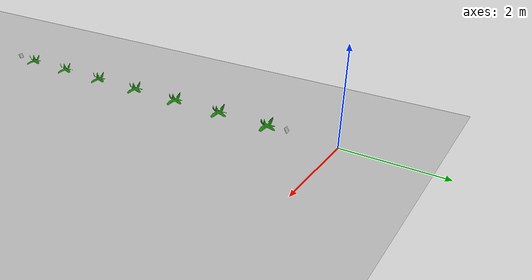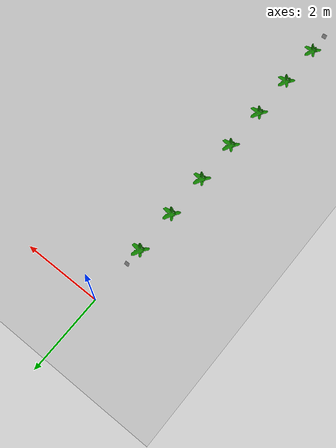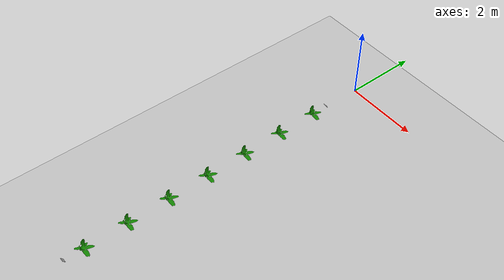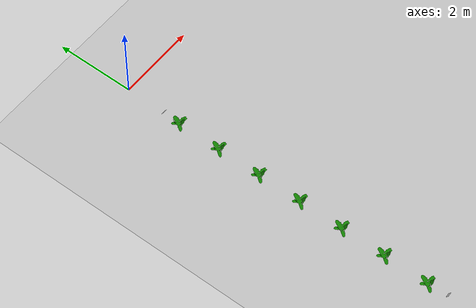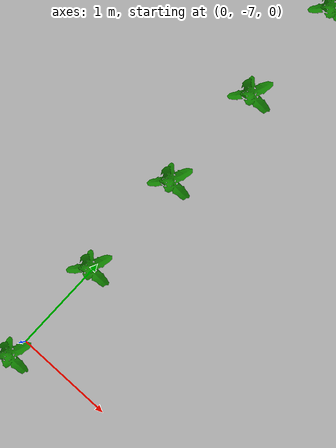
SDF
<sdf version='1.6'>
  <world name='default'>

    <scene>
      <ambient>0.5 0.5 0.5 1</ambient>
      <background>0.7 0.7 0.7 1</background>
      <shadows>0</shadows>
    </scene>

    <include>
      <uri>model://sun</uri>
    </include>

    <include>
        <uri>model://field</uri>
    </include>

    <include>
        <uri>model://start_end_marker</uri>
    </include>

    <include>
        <uri>model://plant_single_row</uri>
    </include>

  </world>
</sdf>

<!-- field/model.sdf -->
<sdf version='1.6'>
  <model name='field'>
  <static>true</static>
    <link name='base_link'>
    <collision name="collision">
        <geometry>
            <mesh>
                <scale>1 1 1</scale>
                <uri>model://field/field.dae</uri>
            </mesh>
        </geometry>
    </collision>
      <visual name='base_link_visual'>
        <pose frame=''>0 0 0 0 0 0</pose>
        <geometry>
          <mesh>
            <scale>1 1 1</scale>
            <uri>model://field/field.dae</uri>
          </mesh>
        </geometry>
      </visual>
    </link>
  </model>
</sdf>

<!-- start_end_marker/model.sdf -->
<sdf version='1.6'>
  <model name='start_end_marker'>
  <static>true</static>
    <link name='base_link'>
      <visual name='base_link_visual'>
        <pose frame=''>0 0 0 0 0 0</pose>
        <geometry>
          <mesh>
            <scale>1 1 1</scale>
            <uri>model://start_end_marker/start_end.dae</uri>
          </mesh>
        </geometry>
      </visual>
    </link>
  </model>
</sdf>

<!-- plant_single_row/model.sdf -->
<sdf version='1.6'>
  <model name='plant_single_row'>
  <static>true</static>
    <link name='base_link'>
      <visual name='base_link_visual'>
        <pose frame=''>0 0 0 0 0 0</pose>
        <geometry>
          <mesh>
            <scale>1 1 1</scale>
            <uri>model://plant_single_row/plant_single.dae</uri>
          </mesh>
        </geometry>
      </visual>
    </link>
  </model>
</sdf>
